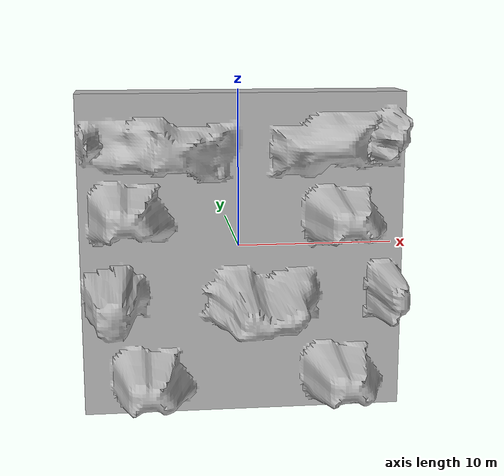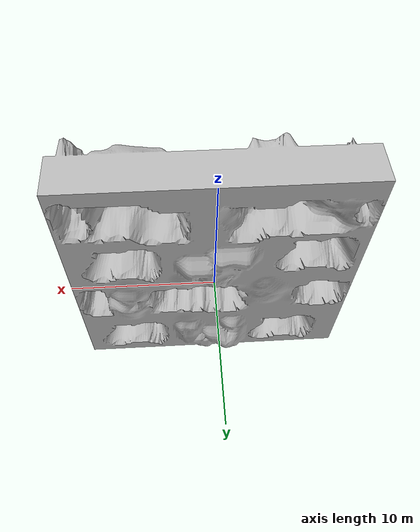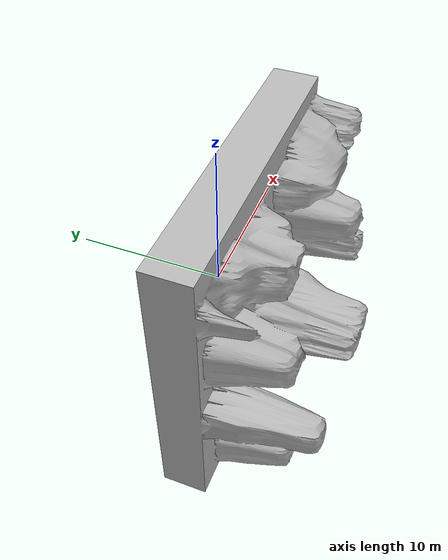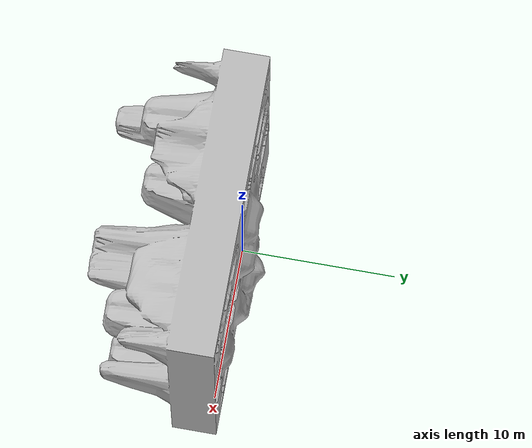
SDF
<?xml version="1.0"?>
<sdf version="1.4">
  <world name="default">
    <include>
      <uri>model://sun</uri>
    </include>
    <include>
      <uri>model://map_2</uri>
    </include>
  </world>
</sdf>

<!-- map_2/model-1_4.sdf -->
<sdf version="1.4">
  <model name="map_2">
    <static>true</static>
    <link name="map_link">
      <pose>0 0 0 0 0 0</pose>
      <collision name="collision">
        <geometry>
          <mesh>
            <uri>model://map_2/meshes/map2.dae</uri>
          </mesh>
        </geometry>
      </collision>
      <visual name="visual">
        <geometry>
          <mesh>
            <uri>model://map_2/meshes/map2.dae</uri>
          </mesh>
        </geometry>
        <material>
          <script>
            <uri>model://map_2/materials/scripts/map2.material</uri>
            <uri>model://map_2/materials/textures/map2.jpg</uri>
            <name>map_2/Image</name>
          </script>
        </material>
      </visual>
      <surface>
        <friction>
          <ode>
              <mu>99999999.0</mu>
              <mu2>99999999.0</mu2>
              <fdir1>0 0 0</fdir1>
              <slip1>0</slip1>
              <slip2>0</slip2>
          </ode>
        </friction>
      </surface>
    </link>
  </model>
</sdf>
